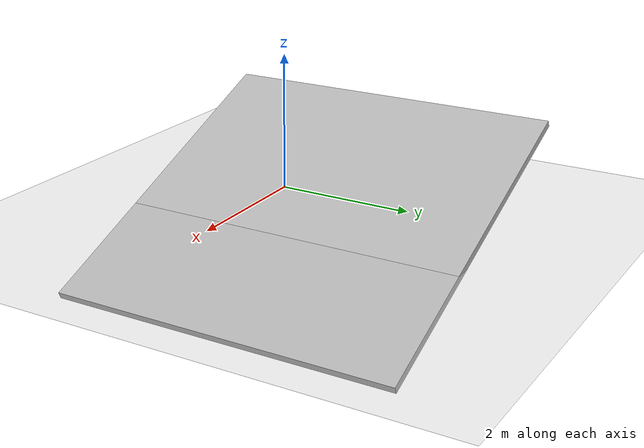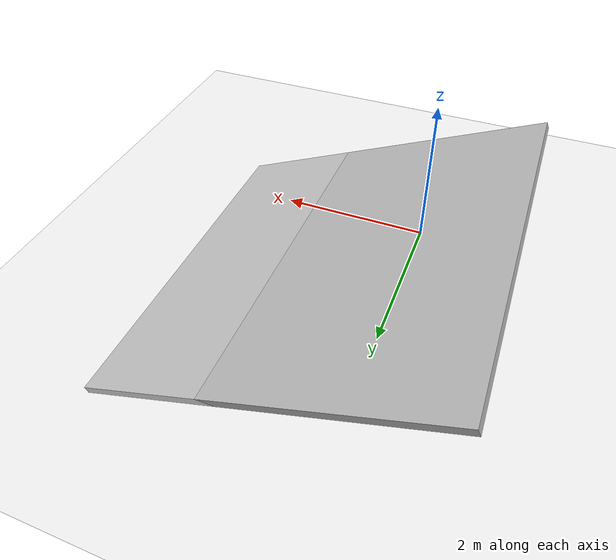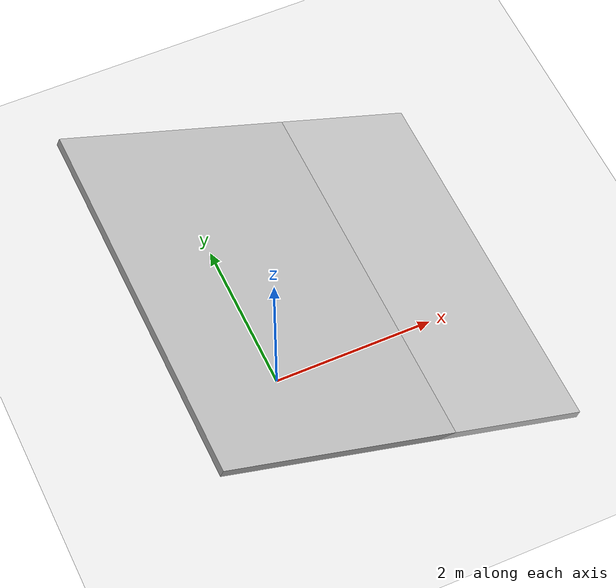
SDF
<?xml version="1.0" ?>
<sdf version="1.4">
  <world name="default">
    <include>
      <uri>model://ground_plane</uri>
    </include>
    <include>
      <uri>model://sun</uri>
    </include>
    <model name="box">
      <static>true</static>
      <pose>1 1 0.2 0 0.4 0</pose>
      <link name="link">
        <collision name="collision">
          <geometry>
            <box>
              <size>1 0.5 .1</size>
            </box>
          </geometry>
        </collision>
        <visual name="visual">
          <geometry>
            <box>
              <size>5 5 .1</size>
            </box>
          </geometry>
        </visual>
        <inertial>
        <pose>1 1 0.2 0 0.4 0</pose>
        <mass>85</mass>
        <inertia>
         <ixx>1</ixx>
         <ixy>0</ixy>
         <ixz>0</ixz>
         <iyy>1</iyy>
         <iyz>0</iyz>
         <izz>1</izz>

        </inertia>
        </inertial>
      </link>
    </model>
  </world>
</sdf>
